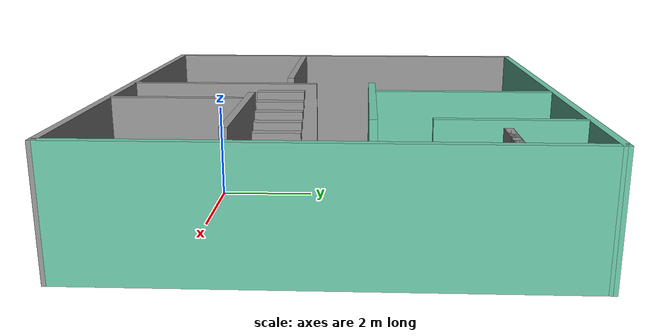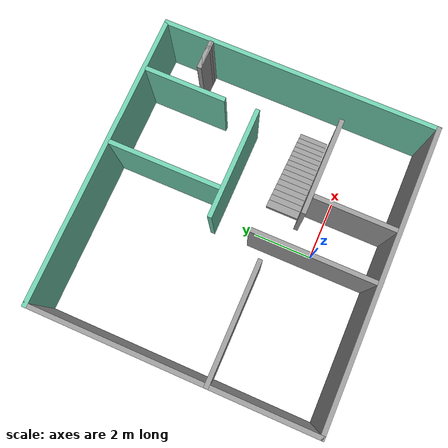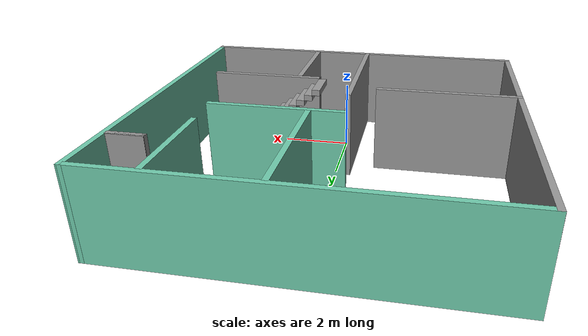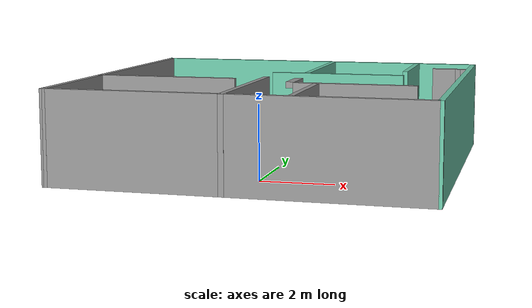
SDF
<?xml version='1.0'?>
<sdf version='1.7'>
  <model name='our_house'>
    <pose>-0.073859 2.59663 0 0 -0 0</pose>
    <link name='Stairs_0'>
      <visual name='Stairs_0_Visual_0'>
        <pose>3.89631 -1.16417 0.083333 0 -0 -1.5708</pose>
        <geometry>
          <box>
            <size>1 0.231 0.166667</size>
          </box>
        </geometry>
        <material>
          <script>
            <uri>file://media/materials/scripts/gazebo.material</uri>
            <name>Gazebo/Grey</name>
          </script>
          <ambient>1 1 1 1</ambient>
        </material>
        <meta>
          <layer>0</layer>
        </meta>
      </visual>
      <collision name='Stairs_0_Collision_0'>
        <geometry>
          <box>
            <size>1 0.231 0.166667</size>
          </box>
        </geometry>
        <pose>3.89631 -1.16417 0.083333 0 -0 -1.5708</pose>
      </collision>
      <visual name='Stairs_0_Visual_1'>
        <pose>3.66531 -1.16417 0.25 0 -0 -1.5708</pose>
        <geometry>
          <box>
            <size>1 0.231 0.166667</size>
          </box>
        </geometry>
        <material>
          <script>
            <uri>file://media/materials/scripts/gazebo.material</uri>
            <name>Gazebo/Grey</name>
          </script>
          <ambient>1 1 1 1</ambient>
        </material>
        <meta>
          <layer>0</layer>
        </meta>
      </visual>
      <collision name='Stairs_0_Collision_1'>
        <geometry>
          <box>
            <size>1 0.231 0.166667</size>
          </box>
        </geometry>
        <pose>3.66531 -1.16417 0.25 0 -0 -1.5708</pose>
      </collision>
      <visual name='Stairs_0_Visual_2'>
        <pose>3.43431 -1.16417 0.416667 0 -0 -1.5708</pose>
        <geometry>
          <box>
            <size>1 0.231 0.166667</size>
          </box>
        </geometry>
        <material>
          <script>
            <uri>file://media/materials/scripts/gazebo.material</uri>
            <name>Gazebo/Grey</name>
          </script>
          <ambient>1 1 1 1</ambient>
        </material>
        <meta>
          <layer>0</layer>
        </meta>
      </visual>
      <collision name='Stairs_0_Collision_2'>
        <geometry>
          <box>
            <size>1 0.231 0.166667</size>
          </box>
        </geometry>
        <pose>3.43431 -1.16417 0.416667 0 -0 -1.5708</pose>
      </collision>
      <visual name='Stairs_0_Visual_3'>
        <pose>3.20331 -1.16417 0.583333 0 -0 -1.5708</pose>
        <geometry>
          <box>
            <size>1 0.231 0.166667</size>
          </box>
        </geometry>
        <material>
          <script>
            <uri>file://media/materials/scripts/gazebo.material</uri>
            <name>Gazebo/Grey</name>
          </script>
          <ambient>1 1 1 1</ambient>
        </material>
        <meta>
          <layer>0</layer>
        </meta>
      </visual>
      <collision name='Stairs_0_Collision_3'>
        <geometry>
          <box>
            <size>1 0.231 0.166667</size>
          </box>
        </geometry>
        <pose>3.20331 -1.16417 0.583333 0 -0 -1.5708</pose>
      </collision>
      <visual name='Stairs_0_Visual_4'>
        <pose>2.97231 -1.16417 0.75 0 -0 -1.5708</pose>
        <geometry>
          <box>
            <size>1 0.231 0.166667</size>
          </box>
        </geometry>
        <material>
          <script>
            <uri>file://media/materials/scripts/gazebo.material</uri>
            <name>Gazebo/Grey</name>
          </script>
          <ambient>1 1 1 1</ambient>
        </material>
        <meta>
          <layer>0</layer>
        </meta>
      </visual>
      <collision name='Stairs_0_Collision_4'>
        <geometry>
          <box>
            <size>1 0.231 0.166667</size>
          </box>
        </geometry>
        <pose>2.97231 -1.16417 0.75 0 -0 -1.5708</pose>
      </collision>
      <visual name='Stairs_0_Visual_5'>
        <pose>2.74131 -1.16417 0.916667 0 -0 -1.5708</pose>
        <geometry>
          <box>
            <size>1 0.231 0.166667</size>
          </box>
        </geometry>
        <material>
          <script>
            <uri>file://media/materials/scripts/gazebo.material</uri>
            <name>Gazebo/Grey</name>
          </script>
          <ambient>1 1 1 1</ambient>
        </material>
        <meta>
          <layer>0</layer>
        </meta>
      </visual>
      <collision name='Stairs_0_Collision_5'>
        <geometry>
          <box>
            <size>1 0.231 0.166667</size>
          </box>
        </geometry>
        <pose>2.74131 -1.16417 0.916667 0 -0 -1.5708</pose>
      </collision>
      <visual name='Stairs_0_Visual_6'>
        <pose>2.51031 -1.16417 1.08333 0 -0 -1.5708</pose>
        <geometry>
          <box>
            <size>1 0.231 0.166667</size>
          </box>
        </geometry>
        <material>
          <script>
            <uri>file://media/materials/scripts/gazebo.material</uri>
            <name>Gazebo/Grey</name>
          </script>
          <ambient>1 1 1 1</ambient>
        </material>
        <meta>
          <layer>0</layer>
        </meta>
      </visual>
      <collision name='Stairs_0_Collision_6'>
        <geometry>
          <box>
            <size>1 0.231 0.166667</size>
          </box>
        </geometry>
        <pose>2.51031 -1.16417 1.08333 0 -0 -1.5708</pose>
      </collision>
      <visual name='Stairs_0_Visual_7'>
        <pose>2.27931 -1.16417 1.25 0 -0 -1.5708</pose>
        <geometry>
          <box>
            <size>1 0.231 0.166667</size>
          </box>
        </geometry>
        <material>
          <script>
            <uri>file://media/materials/scripts/gazebo.material</uri>
            <name>Gazebo/Grey</name>
          </script>
          <ambient>1 1 1 1</ambient>
        </material>
        <meta>
          <layer>0</layer>
        </meta>
      </visual>
      <collision name='Stairs_0_Collision_7'>
        <geometry>
          <box>
            <size>1 0.231 0.166667</size>
          </box>
        </geometry>
        <pose>2.27931 -1.16417 1.25 0 -0 -1.5708</pose>
      </collision>
      <visual name='Stairs_0_Visual_8'>
        <pose>2.04831 -1.16417 1.41667 0 -0 -1.5708</pose>
        <geometry>
          <box>
            <size>1 0.231 0.166667</size>
          </box>
        </geometry>
        <material>
          <script>
            <uri>file://media/materials/scripts/gazebo.material</uri>
            <name>Gazebo/Grey</name>
          </script>
          <ambient>1 1 1 1</ambient>
        </material>
        <meta>
          <layer>0</layer>
        </meta>
      </visual>
      <collision name='Stairs_0_Collision_8'>
        <geometry>
          <box>
            <size>1 0.231 0.166667</size>
          </box>
        </geometry>
        <pose>2.04831 -1.16417 1.41667 0 -0 -1.5708</pose>
      </collision>
      <visual name='Stairs_0_Visual_9'>
        <pose>1.81731 -1.16417 1.58333 0 -0 -1.5708</pose>
        <geometry>
          <box>
            <size>1 0.231 0.166667</size>
          </box>
        </geometry>
        <material>
          <script>
            <uri>file://media/materials/scripts/gazebo.material</uri>
            <name>Gazebo/Grey</name>
          </script>
          <ambient>1 1 1 1</ambient>
        </material>
        <meta>
          <layer>0</layer>
        </meta>
      </visual>
      <collision name='Stairs_0_Collision_9'>
        <geometry>
          <box>
            <size>1 0.231 0.166667</size>
          </box>
        </geometry>
        <pose>1.81731 -1.16417 1.58333 0 -0 -1.5708</pose>
      </collision>
      <visual name='Stairs_0_Visual_10'>
        <pose>1.58631 -1.16417 1.75 0 -0 -1.5708</pose>
        <geometry>
          <box>
            <size>1 0.231 0.166667</size>
          </box>
        </geometry>
        <material>
          <script>
            <uri>file://media/materials/scripts/gazebo.material</uri>
            <name>Gazebo/Grey</name>
          </script>
          <ambient>1 1 1 1</ambient>
        </material>
        <meta>
          <layer>0</layer>
        </meta>
      </visual>
      <collision name='Stairs_0_Collision_10'>
        <geometry>
          <box>
            <size>1 0.231 0.166667</size>
          </box>
        </geometry>
        <pose>1.58631 -1.16417 1.75 0 -0 -1.5708</pose>
      </collision>
      <visual name='Stairs_0_Visual_11'>
        <pose>1.35531 -1.16417 1.91667 0 -0 -1.5708</pose>
        <geometry>
          <box>
            <size>1 0.231 0.166667</size>
          </box>
        </geometry>
        <material>
          <script>
            <uri>file://media/materials/scripts/gazebo.material</uri>
            <name>Gazebo/Grey</name>
          </script>
          <ambient>1 1 1 1</ambient>
        </material>
        <meta>
          <layer>0</layer>
        </meta>
      </visual>
      <collision name='Stairs_0_Collision_11'>
        <geometry>
          <box>
            <size>1 0.231 0.166667</size>
          </box>
        </geometry>
        <pose>1.35531 -1.16417 1.91667 0 -0 -1.5708</pose>
      </collision>
      <visual name='Stairs_0_Visual_12'>
        <pose>1.12431 -1.16417 2.08333 0 -0 -1.5708</pose>
        <geometry>
          <box>
            <size>1 0.231 0.166667</size>
          </box>
        </geometry>
        <material>
          <script>
            <uri>file://media/materials/scripts/gazebo.material</uri>
            <name>Gazebo/Grey</name>
          </script>
          <ambient>1 1 1 1</ambient>
        </material>
        <meta>
          <layer>0</layer>
        </meta>
      </visual>
      <collision name='Stairs_0_Collision_12'>
        <geometry>
          <box>
            <size>1 0.231 0.166667</size>
          </box>
        </geometry>
        <pose>1.12431 -1.16417 2.08333 0 -0 -1.5708</pose>
      </collision>
      <visual name='Stairs_0_Visual_13'>
        <pose>0.89331 -1.16417 2.25 0 -0 -1.5708</pose>
        <geometry>
          <box>
            <size>1 0.231 0.166667</size>
          </box>
        </geometry>
        <material>
          <script>
            <uri>file://media/materials/scripts/gazebo.material</uri>
            <name>Gazebo/Grey</name>
          </script>
          <ambient>1 1 1 1</ambient>
        </material>
        <meta>
          <layer>0</layer>
        </meta>
      </visual>
      <collision name='Stairs_0_Collision_13'>
        <geometry>
          <box>
            <size>1 0.231 0.166667</size>
          </box>
        </geometry>
        <pose>0.89331 -1.16417 2.25 0 -0 -1.5708</pose>
      </collision>
      <visual name='Stairs_0_Visual_14'>
        <pose>0.66231 -1.16417 2.41667 0 -0 -1.5708</pose>
        <geometry>
          <box>
            <size>1 0.231 0.166667</size>
          </box>
        </geometry>
        <material>
          <script>
            <uri>file://media/materials/scripts/gazebo.material</uri>
            <name>Gazebo/Grey</name>
          </script>
          <ambient>1 1 1 1</ambient>
        </material>
        <meta>
          <layer>0</layer>
        </meta>
      </visual>
      <collision name='Stairs_0_Collision_14'>
        <geometry>
          <box>
            <size>1 0.231 0.166667</size>
          </box>
        </geometry>
        <pose>0.66231 -1.16417 2.41667 0 -0 -1.5708</pose>
      </collision>
    </link>
    <link name='Wall_0'>
      <collision name='Wall_0_Collision'>
        <geometry>
          <box>
            <size>10 0.15 2.5</size>
          </box>
        </geometry>
        <pose>0 0 1.25 0 -0 0</pose>
      </collision>
      <visual name='Wall_0_Visual'>
        <pose>0 0 1.25 0 -0 0</pose>
        <geometry>
          <box>
            <size>10 0.15 2.5</size>
          </box>
        </geometry>
        <material>
          <script>
            <uri>file://media/materials/scripts/gazebo.material</uri>
            <name>Gazebo/Grey</name>
          </script>
          <ambient>1 1 1 1</ambient>
        </material>
        <meta>
          <layer>0</layer>
        </meta>
      </visual>
      <pose>-0.001141 -4.63663 0 0 -0 0</pose>
    </link>
    <link name='Wall_1'>
      <collision name='Wall_1_Collision'>
        <geometry>
          <box>
            <size>9.42511 0.15 2.5</size>
          </box>
        </geometry>
        <pose>0 0 1.25 0 -0 0</pose>
      </collision>
      <visual name='Wall_1_Visual'>
        <pose>0 0 1.25 0 -0 0</pose>
        <geometry>
          <box>
            <size>9.42511 0.15 2.5</size>
          </box>
        </geometry>
        <material>
          <script>
            <uri>file://media/materials/scripts/gazebo.material</uri>
            <name>Gazebo/Grey</name>
          </script>
          <ambient>0.435294 0.796078 0.67451 1</ambient>
        </material>
        <meta>
          <layer>0</layer>
        </meta>
      </visual>
      <pose>4.925 0.000921 0 0 -0 1.57055</pose>
    </link>
    <link name='Wall_11'>
      <collision name='Wall_11_Collision'>
        <geometry>
          <box>
            <size>4.25 0.15 2.5</size>
          </box>
        </geometry>
        <pose>0 0 1.25 0 -0 0</pose>
      </collision>
      <visual name='Wall_11_Visual'>
        <pose>0 0 1.25 0 -0 0</pose>
        <geometry>
          <box>
            <size>4.25 0.15 2.5</size>
          </box>
        </geometry>
        <material>
          <script>
            <uri>file://media/materials/scripts/gazebo.material</uri>
            <name>Gazebo/Grey</name>
          </script>
          <ambient>1 1 1 1</ambient>
        </material>
        <meta>
          <layer>0</layer>
        </meta>
      </visual>
      <pose>-0.293634 -2.58849 0 0 -0 1.5708</pose>
    </link>
    <link name='Wall_13'>
      <collision name='Wall_13_Collision'>
        <geometry>
          <box>
            <size>3.75 0.15 2.5</size>
          </box>
        </geometry>
        <pose>0 0 1.25 0 -0 0</pose>
      </collision>
      <visual name='Wall_13_Visual'>
        <pose>0 0 1.25 0 -0 0</pose>
        <geometry>
          <box>
            <size>3.75 0.15 2.5</size>
          </box>
        </geometry>
        <material>
          <script>
            <uri>file://media/materials/scripts/gazebo.material</uri>
            <name>Gazebo/Grey</name>
          </script>
          <ambient>0.435294 0.796078 0.67451 1</ambient>
        </material>
        <meta>
          <layer>0</layer>
        </meta>
      </visual>
      <pose>1.43639 0.772014 0 0 -0 0</pose>
    </link>
    <link name='Wall_15'>
      <collision name='Wall_15_Collision'>
        <geometry>
          <box>
            <size>3.75 0.15 2.5</size>
          </box>
        </geometry>
        <pose>0 0 1.25 0 -0 0</pose>
      </collision>
      <visual name='Wall_15_Visual'>
        <pose>0 0 1.25 0 -0 0</pose>
        <geometry>
          <box>
            <size>3.75 0.15 2.5</size>
          </box>
        </geometry>
        <material>
          <script>
            <uri>file://media/materials/scripts/gazebo.material</uri>
            <name>Gazebo/Grey</name>
          </script>
          <ambient>0.435294 0.796078 0.67451 1</ambient>
        </material>
        <meta>
          <layer>0</layer>
        </meta>
      </visual>
      <pose>0.538267 2.71044 0 0 -0 1.5708</pose>
    </link>
    <link name='Wall_17'>
      <collision name='Wall_17_Collision'>
        <geometry>
          <box>
            <size>2.75 0.15 2.5</size>
          </box>
        </geometry>
        <pose>0 0 1.25 0 -0 0</pose>
      </collision>
      <visual name='Wall_17_Visual'>
        <pose>0 0 1.25 0 -0 0</pose>
        <geometry>
          <box>
            <size>2.75 0.15 2.5</size>
          </box>
        </geometry>
        <material>
          <script>
            <uri>file://media/materials/scripts/gazebo.material</uri>
            <name>Gazebo/Grey</name>
          </script>
          <ambient>0.435294 0.796078 0.67451 1</ambient>
        </material>
        <meta>
          <layer>0</layer>
        </meta>
      </visual>
      <pose>3.20438 3.20907 0 0 -0 -1.5708</pose>
    </link>
    <link name='Wall_2'>
      <collision name='Wall_2_Collision'>
        <geometry>
          <box>
            <size>10 0.15 2.5</size>
          </box>
        </geometry>
        <pose>0 0 1.25 0 -0 0</pose>
      </collision>
      <visual name='Wall_2_Visual'>
        <pose>0 0 1.25 0 -0 0</pose>
        <geometry>
          <box>
            <size>10 0.15 2.5</size>
          </box>
        </geometry>
        <material>
          <script>
            <uri>file://media/materials/scripts/gazebo.material</uri>
            <name>Gazebo/Grey</name>
          </script>
          <ambient>0.435294 0.796078 0.67451 1</ambient>
        </material>
        <meta>
          <layer>0</layer>
        </meta>
      </visual>
      <pose>0.001141 4.63848 0 0 -0 3.14159</pose>
    </link>
    <link name='Wall_20'>
      <collision name='Wall_20_Collision'>
        <geometry>
          <box>
            <size>0.15 0.15 2.5</size>
          </box>
        </geometry>
        <pose>0 0 1.25 0 -0 0</pose>
      </collision>
      <visual name='Wall_20_Visual'>
        <pose>0 0 1.25 0 -0 0</pose>
        <geometry>
          <box>
            <size>0.15 0.15 2.5</size>
          </box>
        </geometry>
        <material>
          <script>
            <uri>file://media/materials/scripts/gazebo.material</uri>
            <name>Gazebo/Grey</name>
          </script>
          <ambient>1 1 1 1</ambient>
        </material>
        <meta>
          <layer>0</layer>
        </meta>
      </visual>
      <pose>4.60646 3.02926 0 0 -0 0</pose>
    </link>
    <link name='Wall_21'>
      <collision name='Wall_21_Collision'>
        <geometry>
          <box>
            <size>0.15 0.15 2.5</size>
          </box>
        </geometry>
        <pose>0 0 1.25 0 -0 0</pose>
      </collision>
      <visual name='Wall_21_Visual'>
        <pose>0 0 1.25 0 -0 0</pose>
        <geometry>
          <box>
            <size>0.15 0.15 2.5</size>
          </box>
        </geometry>
        <material>
          <script>
            <uri>file://media/materials/scripts/gazebo.material</uri>
            <name>Gazebo/Grey</name>
          </script>
          <ambient>0.435294 0.796078 0.67451 1</ambient>
        </material>
        <meta>
          <layer>0</layer>
        </meta>
      </visual>
      <pose>4.60646 3.02926 0 0 -0 0</pose>
    </link>
    <link name='Wall_25'>
      <collision name='Wall_25_Collision'>
        <geometry>
          <box>
            <size>1 0.15 2.5</size>
          </box>
        </geometry>
        <pose>0 0 1.25 0 -0 0</pose>
      </collision>
      <visual name='Wall_25_Visual'>
        <pose>0 0 1.25 0 -0 0</pose>
        <geometry>
          <box>
            <size>1 0.15 2.5</size>
          </box>
        </geometry>
        <material>
          <script>
            <uri>file://media/materials/scripts/gazebo.material</uri>
            <name>Gazebo/Grey</name>
          </script>
          <ambient>1 1 1 1</ambient>
        </material>
        <meta>
          <layer>0</layer>
        </meta>
      </visual>
      <pose>4.37929 3.03721 0 0 -0 0</pose>
    </link>
    <link name='Wall_26'>
      <collision name='Wall_26_Collision'>
        <geometry>
          <box>
            <size>1 0.15 2.5</size>
          </box>
        </geometry>
        <pose>0 0 1.25 0 -0 0</pose>
      </collision>
      <visual name='Wall_26_Visual'>
        <pose>0 0 1.25 0 -0 0</pose>
        <geometry>
          <box>
            <size>1 0.15 2.5</size>
          </box>
        </geometry>
        <material>
          <script>
            <uri>file://media/materials/scripts/gazebo.material</uri>
            <name>Gazebo/Grey</name>
          </script>
          <ambient>1 1 1 1</ambient>
        </material>
        <meta>
          <layer>0</layer>
        </meta>
      </visual>
      <pose>4.37173 3.02965 0 0 -0 3.14159</pose>
    </link>
    <link name='Wall_3'>
      <collision name='Wall_3_Collision'>
        <geometry>
          <box>
            <size>9.42511 0.15 2.5</size>
          </box>
        </geometry>
        <pose>0 0 1.25 0 -0 0</pose>
      </collision>
      <visual name='Wall_3_Visual'>
        <pose>0 0 1.25 0 -0 0</pose>
        <geometry>
          <box>
            <size>9.42511 0.15 2.5</size>
          </box>
        </geometry>
        <material>
          <script>
            <uri>file://media/materials/scripts/gazebo.material</uri>
            <name>Gazebo/Grey</name>
          </script>
          <ambient>1 1 1 1</ambient>
        </material>
        <meta>
          <layer>0</layer>
        </meta>
      </visual>
      <pose>-4.925 0.000921 0 0 -0 -1.57104</pose>
    </link>
    <link name='Wall_5'>
      <collision name='Wall_5_Collision'>
        <geometry>
          <box>
            <size>2.75 0.15 2.5</size>
          </box>
        </geometry>
        <pose>0 0 1.25 0 -0 0</pose>
      </collision>
      <visual name='Wall_5_Visual'>
        <pose>0 0 1.25 0 -0 0</pose>
        <geometry>
          <box>
            <size>2.75 0.15 2.5</size>
          </box>
        </geometry>
        <material>
          <script>
            <uri>file://media/materials/scripts/gazebo.material</uri>
            <name>Gazebo/Grey</name>
          </script>
          <ambient>1 1 1 1</ambient>
        </material>
        <meta>
          <layer>0</layer>
        </meta>
      </visual>
      <pose>1.40888 -3.23341 0 0 -0 -1.5708</pose>
    </link>
    <link name='Wall_7'>
      <collision name='Wall_7_Collision'>
        <geometry>
          <box>
            <size>3.25 0.15 2.5</size>
          </box>
        </geometry>
        <pose>0 0 1.25 0 -0 0</pose>
      </collision>
      <visual name='Wall_7_Visual'>
        <pose>0 0 1.25 0 -0 0</pose>
        <geometry>
          <box>
            <size>3.25 0.15 2.5</size>
          </box>
        </geometry>
        <material>
          <script>
            <uri>file://media/materials/scripts/gazebo.material</uri>
            <name>Gazebo/Grey</name>
          </script>
          <ambient>1 1 1 1</ambient>
        </material>
        <meta>
          <layer>0</layer>
        </meta>
      </visual>
      <pose>2.40641 -1.776 0 0 -0 0</pose>
    </link>
    <link name='Wall_9'>
      <collision name='Wall_9_Collision'>
        <geometry>
          <box>
            <size>4 0.15 2.5</size>
          </box>
        </geometry>
        <pose>0 0 1.25 0 -0 0</pose>
      </collision>
      <visual name='Wall_9_Visual'>
        <pose>0 0 1.25 0 -0 0</pose>
        <geometry>
          <box>
            <size>4 0.15 2.5</size>
          </box>
        </geometry>
        <material>
          <script>
            <uri>file://media/materials/scripts/gazebo.material</uri>
            <name>Gazebo/Grey</name>
          </script>
          <ambient>1 1 1 1</ambient>
        </material>
        <meta>
          <layer>0</layer>
        </meta>
      </visual>
      <pose>-2.99752 -1.12887 0 0 -0 0</pose>
    </link>
    <static>1</static>
  </model>
</sdf>
